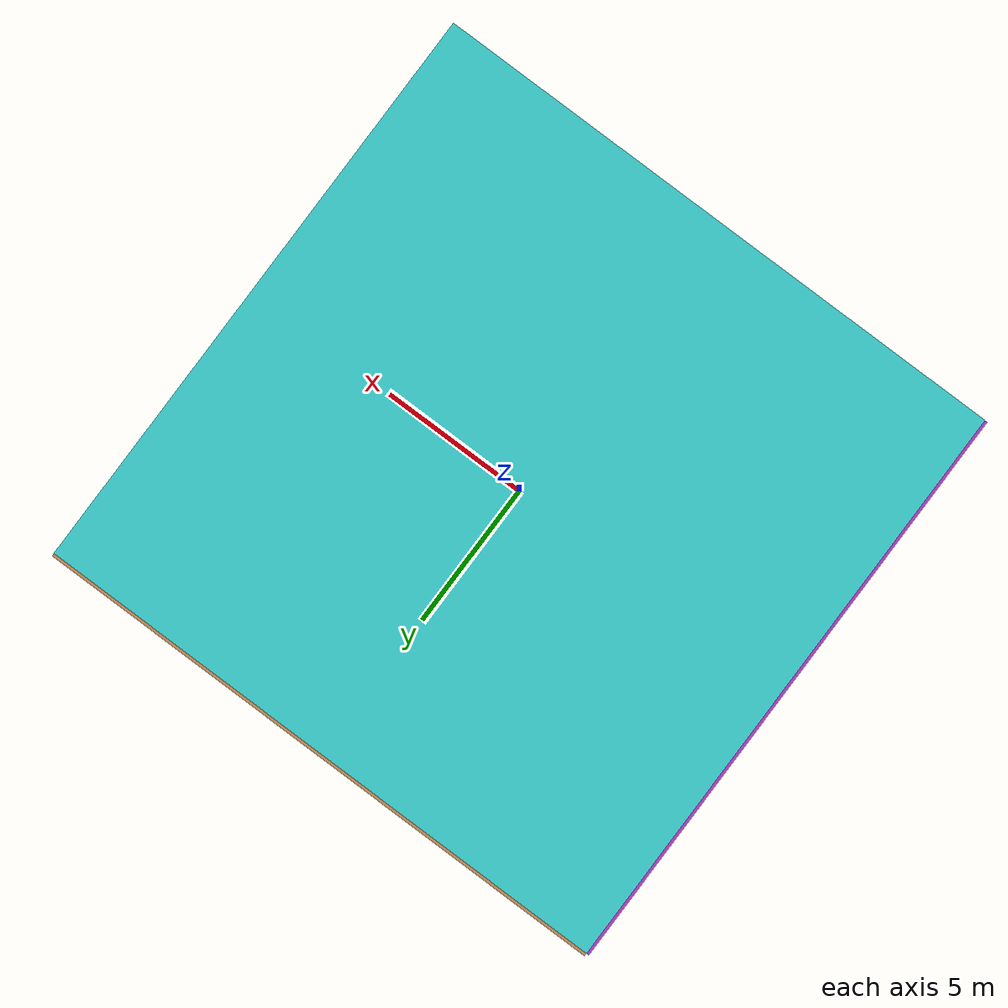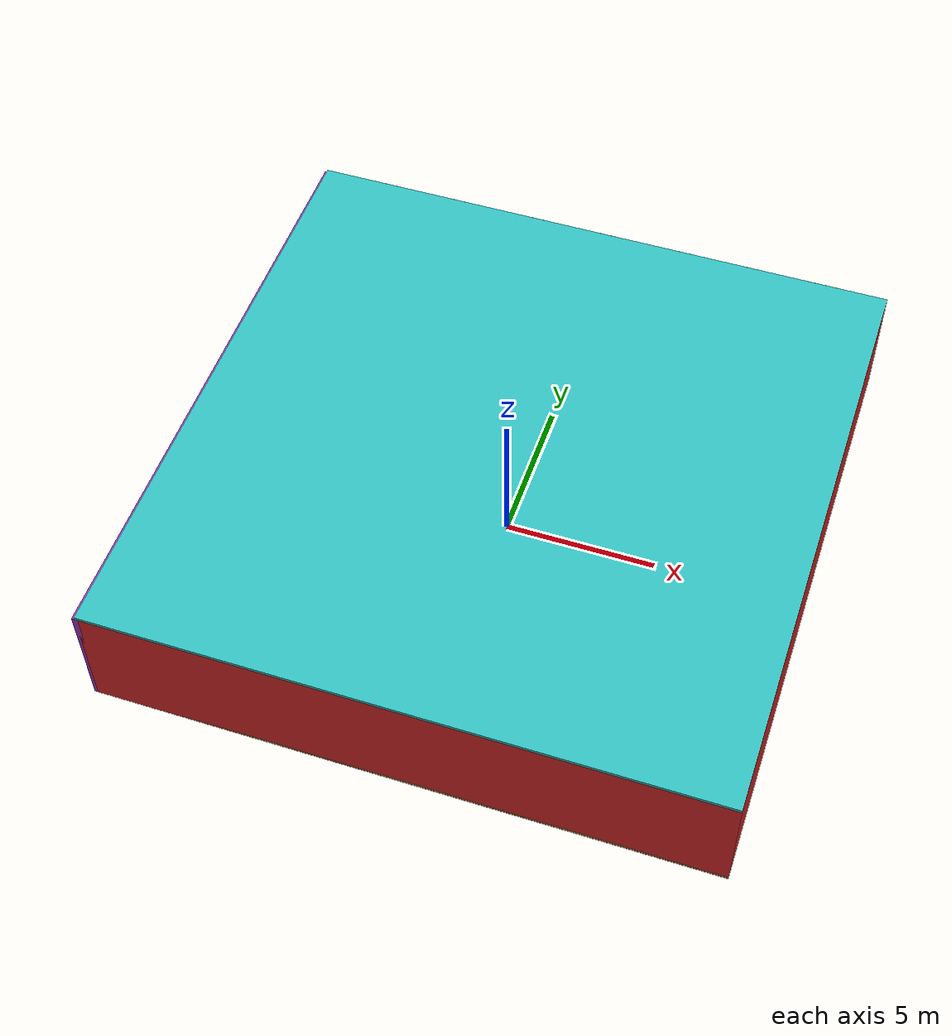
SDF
<sdf version="1.4">
 <world name="default">
  <physics type="ode">
   <max_step_size>0.001</max_step_size>
   <real_time_factor>1</real_time_factor>
   <real_time_update_rate>1000</real_time_update_rate>
   <gravity>0 0 -9.8</gravity>
  </physics>
  <scene><ambient>0.4 0.4 0.4 1</ambient><background>0.7 0.7 0.7 1</background><shadows>1</shadows></scene>
  <model name="Surrounding">
   <static>1</static>
   <link name="Ceiling">
    <collision name="Ceiling_Collision"><geometry><box><size>20 20 0.1</size></box></geometry></collision>
    <visual name="Ceiling_Visual">
     <geometry><box><size>20 20 0.1</size></box></geometry>
     <material>
      <script><uri>file://media/materials/scripts/gazebo.material</uri><name>Gazebo/Turquoise</name></script>
     </material>
    </visual>
    <pose>0 0 4.05 0 0 0</pose>
   </link>
   <link name="Wall_South">
    <collision name="Wall_South_Collision">
     <geometry><box><size>20 0 4</size></box></geometry>
     <pose>0 0 2 0 -0 0</pose>
    </collision>
    <visual name="Wall_South_Visual">
     <pose>0 0 2 0 -0 0</pose>
     <geometry><box><size>20 0 4</size></box></geometry>
     <material>
      <script><uri>file://media/materials/scripts/gazebo.material</uri><name>Gazebo/Red</name></script>
     </material>
    </visual>
    <velocity_decay><linear>0</linear><angular>0</angular></velocity_decay>
    <pose>0 -10 0 0 -0 0</pose>
   </link>
   <link name="Wall_East">
    <collision name="Wall_21_Collision">
     <geometry><box><size>20 0 4</size></box></geometry>
     <pose>0 0 2 0 -0 0</pose>
    </collision>
    <visual name="Wall_21_Visual">
     <pose>0 0 2 0 -0 0</pose>
     <geometry><box><size>20 0 4</size></box></geometry>
     <material>
      <script><uri>file://media/materials/scripts/gazebo.material</uri><name>Gazebo/RedBright</name></script>
     </material>
    </visual>
    <velocity_decay><linear>0</linear><angular>0</angular></velocity_decay>
    <pose>10 0 0 0 -0 1.5708</pose>
   </link>
   <link name="Wall_North">
    <collision name="Wall_22_Collision">
     <geometry><box><size>20 0.2 4</size></box></geometry>
     <pose>0 0 2 0 -0 0</pose>
    </collision>
    <visual name="Wall_22_Visual">
     <pose>0 0 2 0 -0 0</pose>
     <geometry><box><size>20 0.2 4</size></box></geometry>
     <material>
      <script><uri>file://media/materials/scripts/gazebo.material</uri><name>Gazebo/WoodPallet</name></script>
     </material>
    </visual>
    <velocity_decay><linear>0</linear><angular>0</angular></velocity_decay>
    <pose>0 10 0 0 -0 0</pose>
   </link>
   <link name="Wall_West">
    <collision name="Wall_23_Collision">
     <geometry><box><size>20 0.2 4</size></box></geometry>
     <pose>0 0 2 0 -0 0</pose>
    </collision>
    <visual name="Wall_23_Visual">
     <pose>0 0 2 0 -0 0</pose>
     <geometry><box><size>20 0.2 4</size></box></geometry>
     <material>
      <script><uri>file://media/materials/scripts/gazebo.material</uri><name>Gazebo/Purple</name></script>
     </material>
    </visual>
    <velocity_decay><linear>0</linear><angular>0</angular></velocity_decay>
    <pose>-10 0 0 0 0 -1.5708</pose>
   </link>
   <link name="Ground_link">
    <collision name="collision">
     <pose>0 0 .05 0 -0 0</pose>
     <geometry><box><size>20 20 0.1</size></box></geometry>
    </collision>
    <visual name="visual">
     <pose>0 0 .05 0 -0 0</pose>
     <geometry><box><size>20 20 0.1</size></box></geometry>
     <material>
      <script><uri>file://media/materials/scripts/gazebo.material</uri><name>Gazebo/WoodFloor</name></script>
     </material>
    </visual>
   </link>
   <static>1</static>
  </model>
  <spherical_coordinates>
   <surface_model>EARTH_WGS84</surface_model>
   <latitude_deg>0</latitude_deg>
   <longitude_deg>0</longitude_deg>
   <elevation>0</elevation>
   <heading_deg>0</heading_deg>
  </spherical_coordinates>
  <light name="lightball_0" type="diffuse">
   <diffuse>0.8 0.8 0.8 1</diffuse>
   <specular>0.2 0.2 0.2 1</specular>
   <attenuation>
    <range>100</range>
    <constant>0.7</constant>
    <linear>0.01</linear>
    <quadratic>0.001</quadratic>
   </attenuation>
   <direction>-0.5 0.1 -0.9</direction>
   <pose>3.92713475672 1.61144855153 2.2294262032 0 0 0</pose>
  </light>
  <light name="lightball_1" type="diffuse">
   <diffuse>0.8 0.8 0.8 1</diffuse>
   <specular>0.2 0.2 0.2 1</specular>
   <attenuation>
    <range>100</range>
    <constant>0.7</constant>
    <linear>0.01</linear>
    <quadratic>0.001</quadratic>
   </attenuation>
   <direction>-0.5 0.1 -0.9</direction>
   <pose>-3.92003324383 2.8238271304 3.31430885113 0 0 0</pose>
  </light>
  <light name="lightball_2" type="diffuse">
   <diffuse>0.8 0.8 0.8 1</diffuse>
   <specular>0.2 0.2 0.2 1</specular>
   <attenuation>
    <range>100</range>
    <constant>0.7</constant>
    <linear>0.01</linear>
    <quadratic>0.001</quadratic>
   </attenuation>
   <direction>-0.5 0.1 -0.9</direction>
   <pose>5.31326282229 -1.12152176146 1.69831910639 0 0 0</pose>
  </light>
  <light name="lightball_3" type="diffuse">
   <diffuse>0.8 0.8 0.8 1</diffuse>
   <specular>0.2 0.2 0.2 1</specular>
   <attenuation>
    <range>100</range>
    <constant>0.7</constant>
    <linear>0.01</linear>
    <quadratic>0.001</quadratic>
   </attenuation>
   <direction>-0.5 0.1 -0.9</direction>
   <pose>-5.23695733956 -1.6348840835 3.05242232604 0 0 0</pose>
  </light>
  <light name="lightball_4" type="diffuse">
   <diffuse>0.8 0.8 0.8 1</diffuse>
   <specular>0.2 0.2 0.2 1</specular>
   <attenuation>
    <range>100</range>
    <constant>0.7</constant>
    <linear>0.01</linear>
    <quadratic>0.001</quadratic>
   </attenuation>
   <direction>-0.5 0.1 -0.9</direction>
   <pose>8.88424012055 7.24883541163 2.66019614604 0 0 0</pose>
  </light>
  <light name="lightball_5" type="diffuse">
   <diffuse>0.8 0.8 0.8 1</diffuse>
   <specular>0.2 0.2 0.2 1</specular>
   <attenuation>
    <range>100</range>
    <constant>0.7</constant>
    <linear>0.01</linear>
    <quadratic>0.001</quadratic>
   </attenuation>
   <direction>-0.5 0.1 -0.9</direction>
   <pose>1.46263653808 -0.30641500102 0.854223611955 0 0 0</pose>
  </light>
  <light name="lightball_6" type="diffuse">
   <diffuse>0.8 0.8 0.8 1</diffuse>
   <specular>0.2 0.2 0.2 1</specular>
   <attenuation>
    <range>100</range>
    <constant>0.7</constant>
    <linear>0.01</linear>
    <quadratic>0.001</quadratic>
   </attenuation>
   <direction>-0.5 0.1 -0.9</direction>
   <pose>9.97572066878 2.19189419484 3.75244539636 0 0 0</pose>
  </light>
  <include>
   <uri>model://construction_cone</uri>
   <pose>-7.86759598811 -6.44982609244 0 0 0 2.83256935286</pose>
  </include>
  <include>
   <uri>model://textured_shapes</uri>
   <pose>-8.01487228827 -4.48149800184 0 0 0 2.83511664522</pose>
  </include>
  <include>
   <uri>model://robocup_3Dsim_goal</uri>
   <pose>-7.11521413749 1.79966338756 0 0 0 1.21321778635</pose>
  </include>
  <include><uri>model://cabinet</uri><pose>-7.6325828862 4.11358499321 0 0 0 1.92827517017</pose></include>
  <include>
   <uri>model://robocup_3Dsim_goal</uri>
   <pose>-4.25481006056 -4.2567493512 0 0 0 1.29517222597</pose>
  </include>
  <include><uri>model://cabinet</uri><pose>-5.0055276277 4.95786054164 0 0 0 0.649339320855</pose></include>
  <include><uri>model://cabinet</uri><pose>-2.2921834273 -0.329755415111 0 0 0 0.688095136242</pose></include>
  <include>
   <uri>model://robocup_3Dsim_goal</uri>
   <pose>-2.40463302811 5.04214297275 0 0 0 2.90788182967</pose>
  </include>
  <include><uri>model://cabinet</uri><pose>0.409644009924 -3.90252372284 0 0 0 2.0949515859</pose></include>
  <include>
   <uri>model://construction_cone</uri>
   <pose>1.83591372444 -0.615136485436 0 0 0 1.35969928921</pose>
  </include>
  <include><uri>model://cabinet</uri><pose>1.4949217623 5.37735829579 0 0 0 0.352680039578</pose></include>
  <include>
   <uri>model://textured_shapes</uri>
   <pose>3.4703473549 0.73082147098 0 0 0 1.77493018979</pose>
  </include>
  <include><uri>model://table</uri><pose>5.43351485155 8.35224640973 0 0 0 0.804227751772</pose></include>
 </world>
</sdf>

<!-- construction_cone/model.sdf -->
<sdf version="1.5">
  <model name="Construction Cone">
    <link name="link">
      <collision name="collision">
        <geometry>
          <mesh>
            <scale>10 10 10</scale>
            <uri>file://isr-testbed/construction_cone/meshes/construction_cone.dae</uri>
          </mesh>
        </geometry>
      </collision>
      <visual name="visual">
        <geometry>
          <mesh>
            <scale>10 10 10</scale>
            <uri>file://isr-testbed/construction_cone/meshes/construction_cone.dae</uri>
          </mesh>
        </geometry>
      </visual>
    </link>
  </model>
</sdf>

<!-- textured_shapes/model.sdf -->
<sdf version="1.6">
  <model name="textured_shapes">
    <pose>0 0 0.5 0 0 0</pose>
    <link name="box">
      <pose>0 -1.5 0 0 0 0</pose>
      <collision name="collision">
        <geometry>
          <box>
            <size>1 1 1</size>
          </box>
        </geometry>
      </collision>
      <visual name="visual">
        <geometry>
          <box>
            <size>1 1 1</size>
          </box>
        </geometry>
        <material>
          <script>
            <uri>model://../model_source/models/textured_shapes/materials/scripts</uri>
            <uri>model://../model_source/models/textured_shapes/materials/textures</uri>
            <name>TexturedShape/Squares</name>
          </script>
        </material>
      </visual>
    </link>
    <link name="sphere">
      <collision name="collision">
        <geometry>
          <sphere>
            <radius>0.5</radius>
          </sphere>
        </geometry>
      </collision>
      <visual name="visual">
        <geometry>
          <sphere>
            <radius>0.5</radius>
          </sphere>
        </geometry>
        <material>
          <script>
            <uri>model://../model_source/models/textured_shapes/materials/scripts</uri>
            <uri>model://../model_source/models/textured_shapes/materials/textures</uri>
            <name>TexturedShape/Squares</name>
          </script>
        </material>
      </visual>
    </link>
    <link name="cylinder">
      <pose>0 1.5 0 0 0 0</pose>
      <collision name="collision">
        <geometry>
          <cylinder>
            <radius>0.5</radius>
            <length>1</length>
          </cylinder>
        </geometry>
      </collision>
      <visual name="visual">
        <geometry>
          <cylinder>
            <radius>0.5</radius>
            <length>1</length>
          </cylinder>
        </geometry>
        <material>
          <script>
            <uri>model://../model_source/models/textured_shapes/materials/scripts</uri>
            <uri>model://../model_source/models/textured_shapes/materials/textures</uri>
            <name>TexturedShape/Squares</name>
          </script>
        </material>
      </visual>
    </link>
  </model>
</sdf>

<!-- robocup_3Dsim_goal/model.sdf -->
<sdf version="1.5">
  <model name="robocup_3d_goal">
    <static>true</static>
    <link name="left_post">
      <pose>0 1.05 0.45 0 0 0</pose>
      <collision name="collision">
        <geometry>
          <cylinder>
            <radius>0.05</radius>
            <length>0.9</length>
          </cylinder>
        </geometry>
      </collision>
      <visual name="visual">
        <geometry>
          <cylinder>
            <radius>0.05</radius>
            <length>0.9</length>
          </cylinder>
        </geometry>
        <material>
          <script>
            <uri>file://media/materials/scripts/gazebo.material</uri>
            <name>Gazebo/ZincYellow</name>
          </script>
        </material>
      </visual>
    </link>
    <link name="left_support_horiz_lower">
      <pose>0.30 1.05 0.01 0 0 0</pose>
      <collision name="collision">
        <geometry>
          <box>
            <size>0.50 0.02 0.02</size>
          </box>
        </geometry>
      </collision>
      <visual name="visual">
        <geometry>
          <box>
            <size>0.50 0.02 0.02</size>
          </box>
        </geometry>
        <material>
          <script>
            <uri>file://media/materials/scripts/gazebo.material</uri>
            <name>Gazebo/White</name>
          </script>
        </material>
      </visual>
    </link>
    <link name="left_support_horiz_upper">
      <pose>0.30 1.05 0.79 0 0 0</pose>
      <collision name="collision">
        <geometry>
          <box>
            <size>0.50 0.02 0.02</size>
          </box>
        </geometry>
      </collision>
      <visual name="visual">
        <geometry>
          <box>
            <size>0.50 0.02 0.02</size>
          </box>
        </geometry>
        <material>
          <script>
            <uri>file://media/materials/scripts/gazebo.material</uri>
            <name>Gazebo/White</name>
          </script>
        </material>
      </visual>
    </link>
    <link name="left_support_vertical">
      <pose>0.56 1.05 0.4 0 1.5708 0</pose>
      <collision name="collision">
        <geometry>
          <box>
            <size>0.80 0.02 0.02</size>
          </box>
        </geometry>
      </collision>
      <visual name="visual">
        <geometry>
          <box>
            <size>0.80 0.02 0.02</size>
          </box>
        </geometry>
        <material>
          <script>
            <uri>file://media/materials/scripts/gazebo.material</uri>
            <name>Gazebo/White</name>
          </script>
        </material>
      </visual>
    </link>
    <link name="right_support_horiz_lower">
      <pose>0.30 -1.05 0.01 0 0 0</pose>
      <collision name="collision">
        <geometry>
          <box>
            <size>0.50 0.02 0.02</size>
          </box>
        </geometry>
      </collision>
      <visual name="visual">
        <geometry>
          <box>
            <size>0.50 0.02 0.02</size>
          </box>
        </geometry>
        <material>
          <script>
            <uri>file://media/materials/scripts/gazebo.material</uri>
            <name>Gazebo/White</name>
          </script>
        </material>
      </visual>
    </link>
    <link name="right_support_horiz_upper">
      <pose>0.30 -1.05 0.79 0 0 0</pose>
      <collision name="collision">
        <geometry>
          <box>
            <size>0.50 0.02 0.02</size>
          </box>
        </geometry>
      </collision>
      <visual name="visual">
        <geometry>
          <box>
            <size>0.50 0.02 0.02</size>
          </box>
        </geometry>
        <material>
          <script>
            <uri>file://media/materials/scripts/gazebo.material</uri>
            <name>Gazebo/White</name>
          </script>
        </material>
      </visual>
    </link>
    <link name="right_support_vertical">
      <pose>0.56 -1.05 0.4 0 1.5708 0</pose>
      <collision name="collision">
        <geometry>
          <box>
            <size>0.80 0.02 0.02</size>
          </box>
        </geometry>
      </collision>
      <visual name="visual">
        <geometry>
          <box>
            <size>0.80 0.02 0.02</size>
          </box>
        </geometry>
        <material>
          <script>
            <uri>file://media/materials/scripts/gazebo.material</uri>
            <name>Gazebo/White</name>
          </script>
        </material>
      </visual>
    </link>
    <link name="center_support_horiz_lower">
      <pose>0.56 0 0.01 0 1.5708 0</pose>
      <collision name="collision">
        <geometry>
          <box>
            <size>0.02 2.08 0.02</size>
          </box>
        </geometry>
      </collision>
      <visual name="visual">
        <geometry>
          <box>
            <size>0.02 2.08 0.02</size>
          </box>
        </geometry>
        <material>
          <script>
            <uri>file://media/materials/scripts/gazebo.material</uri>
            <name>Gazebo/White</name>
          </script>
        </material>
      </visual>
    </link>
    <link name="center_support_horiz_upper">
      <pose>0.56 0 0.79 0 1.5708 0</pose>
      <collision name="collision">
        <geometry>
          <box>
            <size>0.02 2.08 0.02</size>
          </box>
        </geometry>
      </collision>
      <visual name="visual">
        <geometry>
          <box>
            <size>0.02 2.08 0.02</size>
          </box>
        </geometry>
        <material>
          <script>
            <uri>file://media/materials/scripts/gazebo.material</uri>
            <name>Gazebo/White</name>
          </script>
        </material>
      </visual>
    </link>
    <link name="right_post">
      <pose>0 -1.05 0.45 0 0 0</pose>
      <collision name="collision">
        <geometry>
          <cylinder>
            <radius>0.05</radius>
            <length>0.9</length>
          </cylinder>
        </geometry>
      </collision>
      <visual name="visual">
        <geometry>
          <cylinder>
            <radius>0.05</radius>
            <length>0.9</length>
          </cylinder>
        </geometry>
        <material>
          <script>
            <uri>file://media/materials/scripts/gazebo.material</uri>
            <name>Gazebo/ZincYellow</name>
          </script>
        </material>
      </visual>
    </link>
    <link name="crossbar">
      <pose>0 0 0.85 1.57 1.57 0</pose>
      <collision name="collision">
        <geometry>
          <cylinder>
            <radius>0.05</radius>
            <length>2.0</length>
          </cylinder>
        </geometry>
      </collision>
      <visual name="visual">
        <geometry>
          <cylinder>
            <radius>0.05</radius>
            <length>2.0</length>
          </cylinder>
        </geometry>
        <material>
          <script>
            <uri>file://media/materials/scripts/gazebo.material</uri>
            <name>Gazebo/ZincYellow</name>
          </script>
        </material>
      </visual>
    </link>
    <link name="center_net">
      <pose>0.56 0 0.40 0 0 0</pose>
      <collision name="collision">
        <geometry>
          <box>
            <size>0.01 2.1 0.80</size>
          </box>
        </geometry>
      </collision>
      <visual name="visual">
        <geometry>
          <box>
            <size>0.01 2.1 0.80</size>
          </box>
        </geometry>
        <material>
          <script>
            <uri>model://../model_source/models/robocup09_spl_field/materials/scripts/</uri>
            <uri>model://../model_source/models/robocup09_spl_field/materials/textures/</uri>
            <name>RoboCup/Net</name>
          </script>
        </material>
      </visual>
    </link>
    <link name="left_net">
      <pose>0.30 1.05 0.40 0 0 0</pose>
      <collision name="collision">
        <geometry>
          <box>
            <size>0.50 0.01 0.76</size>
          </box>
        </geometry>
      </collision>
      <visual name="visual">
        <geometry>
          <box>
            <size>0.50 0.01 0.76</size>
          </box>
        </geometry>
        <material>
          <script>
            <uri>model://../model_source/models/robocup09_spl_field/materials/scripts/</uri>
            <uri>model://../model_source/models/robocup09_spl_field/materials/textures/</uri>
            <name>RoboCup/Net</name>
          </script>
        </material>
      </visual>
    </link>
    <link name="right_net">
      <pose>0.30 -1.05 0.40 0 0 0</pose>
      <collision name="collision">
        <geometry>
          <box>
            <size>0.50 0.01 0.76</size>
          </box>
        </geometry>
      </collision>
      <visual name="visual">
        <geometry>
          <box>
            <size>0.50 0.01 0.76</size>
          </box>
        </geometry>
        <material>
          <script>
            <uri>model://../model_source/models/robocup09_spl_field/materials/scripts/</uri>
            <uri>model://../model_source/models/robocup09_spl_field/materials/textures/</uri>
            <name>RoboCup/Net</name>
          </script>
        </material>
      </visual>
    </link>
  </model>
</sdf>

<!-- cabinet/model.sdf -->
<sdf version="1.5">
  <model name="cabinet">
    <static>true</static>
    <link name="cabinet_bottom_plate">
      <inertial>
        <pose>0 0 -1 0 0 0</pose>
        <inertia>
          <ixx>2.050000</ixx>
          <ixy>0</ixy>
          <ixz>0</ixz>
          <iyy>2.050000</iyy>
          <iyz>0</iyz>
          <izz>2.050000</izz>
        </inertia>
        <mass>25.000000</mass>
      </inertial>
      <collision name="cabinet_bottom_plate_geom">
        <pose>0 0 0.010000 0 0 0</pose>
        <geometry>
          <box>
            <size>0.450000 0.450000 0.020000</size>
          </box>
        </geometry>
      </collision>
      <visual name="cabinet_bottom_plate_geom_visual">
        <pose>0 0 0.010000 0 0 0</pose>
        <geometry>
          <box>
            <size>0.450000 0.450000 0.020000</size>
          </box>
        </geometry>
        <material>
          <script>
            <uri>model://media/materials/scripts/gazebo.material</uri>
            <name>Gazebo/Wood</name>
          </script>
        </material>
      </visual>
      <collision name="cabinet_bottom_plate_geom_cabinet_back_plate">
        <pose>0.235000 0 0.510000 0 0 0</pose>
        <geometry>
          <box>
            <size>0.020000 0.450000 1.020000</size>
          </box>
        </geometry>
      </collision>
      <visual name="cabinet_bottom_plate_geom_cabinet_back_plate_visual">
        <pose>0.235000 0 0.510000 0 0 0</pose>
        <geometry>
          <box>
            <size>0.020000 0.450000 1.020000</size>
          </box>
        </geometry>
        <material>
          <script>
            <uri>model://media/materials/scripts/gazebo.material</uri>
            <name>Gazebo/Wood</name>
          </script>
        </material>
      </visual>
      <collision name="cabinet_bottom_plate_geom_cabinet_left_plate">
        <pose>0 0.235000 0.510000 0 0 0</pose>
        <geometry>
          <box>
            <size>0.450000 0.020000 1.020000</size>
          </box>
        </geometry>
      </collision>
      <visual name="cabinet_bottom_plate_geom_cabinet_left_plate_visual">
        <pose>0 0.235000 0.510000 0 0 0</pose>
        <geometry>
          <box>
            <size>0.450000 0.020000 1.020000</size>
          </box>
        </geometry>
        <material>
          <script>
            <uri>model://media/materials/scripts/gazebo.material</uri>
            <name>Gazebo/Wood</name>
          </script>
        </material>
      </visual>
      <collision name="cabinet_bottom_plate_geom_cabinet_middle_plate">
        <pose>0 0 0.510000 0 0 0</pose>
        <geometry>
          <box>
            <size>0.450000 0.450000 0.020000</size>
          </box>
        </geometry>
      </collision>
      <visual name="cabinet_bottom_plate_geom_cabinet_middle_plate_visual">
        <pose>0 0 0.510000 0 0 0</pose>
        <geometry>
          <box>
            <size>0.450000 0.450000 0.020000</size>
          </box>
        </geometry>
        <material>
          <script>
            <uri>model://media/materials/scripts/gazebo.material</uri>
            <name>Gazebo/Wood</name>
          </script>
        </material>
      </visual>
      <collision name="cabinet_bottom_plate_geom_cabinet_right_plate">
        <pose>0 -0.235000 0.510000 0 0 0</pose>
        <geometry>
          <box>
            <size>0.450000 0.020000 1.020000</size>
          </box>
        </geometry>
      </collision>
      <visual name="cabinet_bottom_plate_geom_cabinet_right_plate_visual">
        <pose>0 -0.235000 0.510000 0 0 0</pose>
        <geometry>
          <box>
            <size>0.450000 0.020000 1.020000</size>
          </box>
        </geometry>
        <material>
          <script>
            <uri>model://media/materials/scripts/gazebo.material</uri>
            <name>Gazebo/Wood</name>
          </script>
        </material>
      </visual>
      <collision name="cabinet_bottom_plate_geom_cabinet_top_plate">
        <pose>0 0 1.010000 0 0 0</pose>
        <geometry>
          <box>
            <size>0.450000 0.450000 0.020000</size>
          </box>
        </geometry>
      </collision>
      <visual name="cabinet_bottom_plate_geom_cabinet_top_plate_visual">
        <pose>0 0 1.010000 0 0 0</pose>
        <geometry>
          <box>
            <size>0.450000 0.450000 0.020000</size>
          </box>
        </geometry>
        <material>
          <script>
            <uri>model://media/materials/scripts/gazebo.material</uri>
            <name>Gazebo/Wood</name>
          </script>
        </material>
      </visual>
    </link>
  </model>
</sdf>

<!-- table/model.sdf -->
<sdf version="1.5">
  <model name="table">
    <static>true</static>
    <link name="link">
      <collision name="surface">
        <pose>0 0 1.0 0 0 0</pose>
        <geometry>
          <box>
            <size>1.5 0.8 0.03</size>
          </box>
        </geometry>
        <surface>
          <friction>
            <ode>
              <mu>0.6</mu>
              <mu2>0.6</mu2>
            </ode>
          </friction>
        </surface>
      </collision>
      <visual name="visual1">
        <pose>0 0 1.0 0 0 0</pose>
        <geometry>
          <box>
            <size>1.5 0.8 0.03</size>
          </box>
        </geometry>
        <material>
          <script>
            <uri>model://media/materials/scripts/gazebo.material</uri>
            <name>Gazebo/Wood</name>
          </script>
        </material>
      </visual>
      <collision name="front_left_leg">
        <pose>0.68 0.38 0.5 0 0 0</pose>
        <geometry>
          <cylinder>
            <radius>0.02</radius>
            <length>1.0</length>
          </cylinder>
        </geometry>
      </collision>
      <visual name="front_left_leg">
        <pose>0.68 0.38 0.5 0 0 0</pose>
        <geometry>
          <cylinder>
            <radius>0.02</radius>
            <length>1.0</length>
          </cylinder>
        </geometry>
        <material>
          <script>
            <uri>model://media/materials/scripts/gazebo.material</uri>
            <name>Gazebo/Grey</name>
          </script>
        </material>
      </visual>
      <collision name="front_right_leg">
        <pose>0.68 -0.38 0.5 0 0 0</pose>
        <geometry>
          <cylinder>
            <radius>0.02</radius>
            <length>1.0</length>
          </cylinder>
        </geometry>
      </collision>
      <visual name="front_right_leg">
        <pose>0.68 -0.38 0.5 0 0 0</pose>
        <geometry>
          <cylinder>
            <radius>0.02</radius>
            <length>1.0</length>
          </cylinder>
        </geometry>
        <material>
          <script>
            <uri>model://media/materials/scripts/gazebo.material</uri>
            <name>Gazebo/Grey</name>
          </script>
        </material>
      </visual>
      <collision name="back_right_leg">
        <pose>-0.68 -0.38 0.5 0 0 0</pose>
        <geometry>
          <cylinder>
            <radius>0.02</radius>
            <length>1.0</length>
          </cylinder>
        </geometry>
      </collision>
      <visual name="back_right_leg">
        <pose>-0.68 -0.38 0.5 0 0 0</pose>
        <geometry>
          <cylinder>
            <radius>0.02</radius>
            <length>1.0</length>
          </cylinder>
        </geometry>
        <material>
          <script>
            <uri>model://media/materials/scripts/gazebo.material</uri>
            <name>Gazebo/Grey</name>
          </script>
        </material>
      </visual>
      <collision name="back_left_leg">
        <pose>-0.68 0.38 0.5 0 0 0</pose>
        <geometry>
          <cylinder>
            <radius>0.02</radius>
            <length>1.0</length>
          </cylinder>
        </geometry>
      </collision>
      <visual name="back_left_leg">
        <pose>-0.68 0.38 0.5 0 0 0</pose>
        <geometry>
          <cylinder>
            <radius>0.02</radius>
            <length>1.0</length>
          </cylinder>
        </geometry>
        <material>
          <script>
            <uri>model://media/materials/scripts/gazebo.material</uri>
            <name>Gazebo/Grey</name>
          </script>
        </material>
      </visual>
    </link>
  </model>
</sdf>
